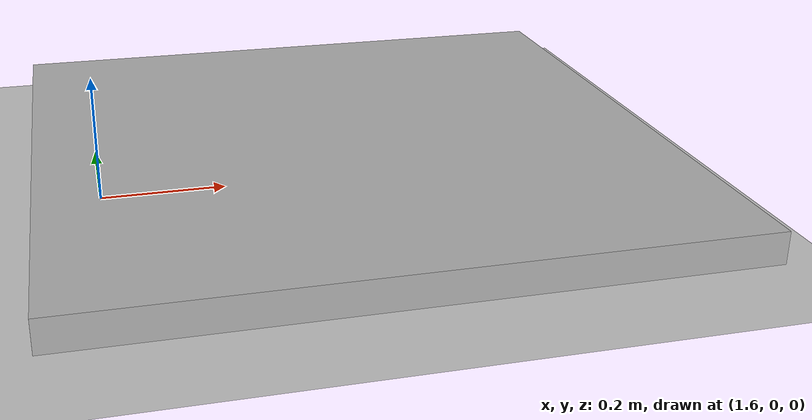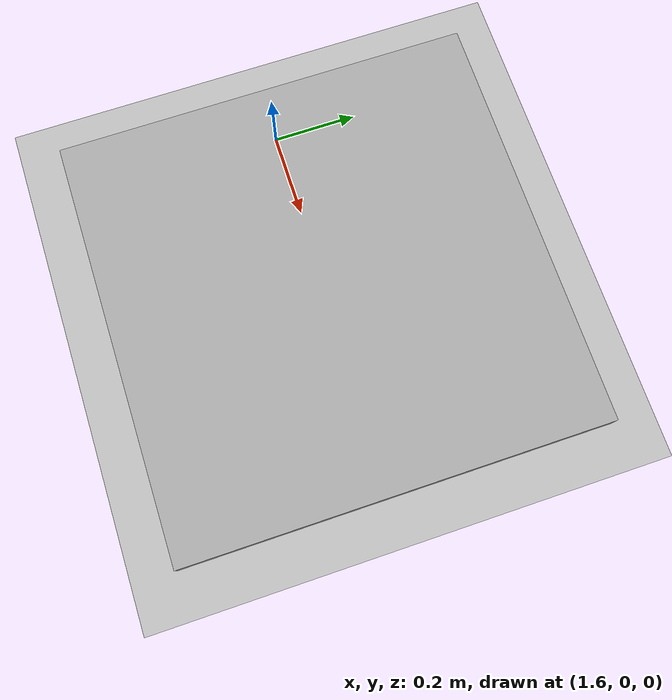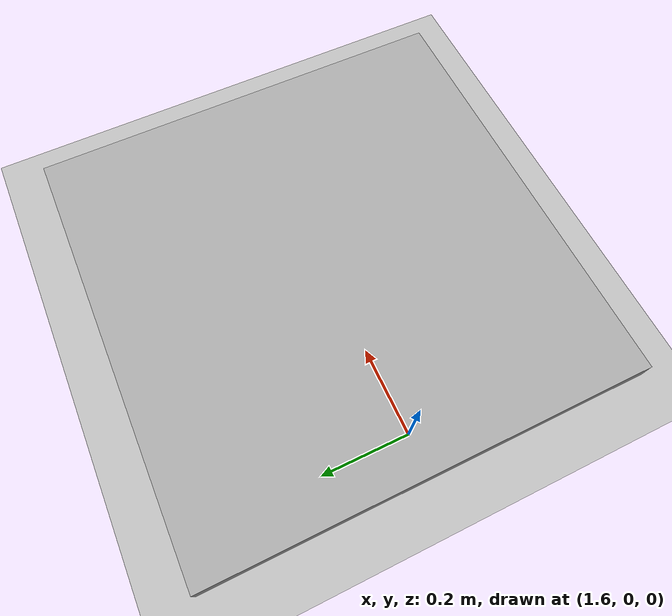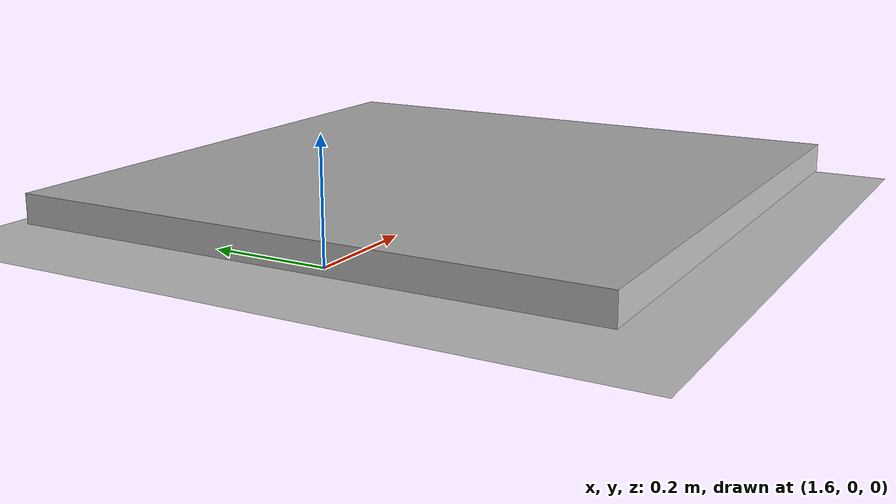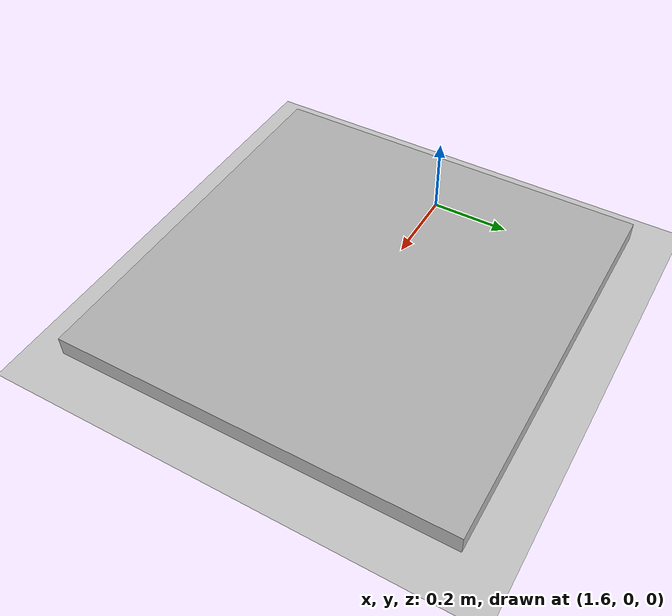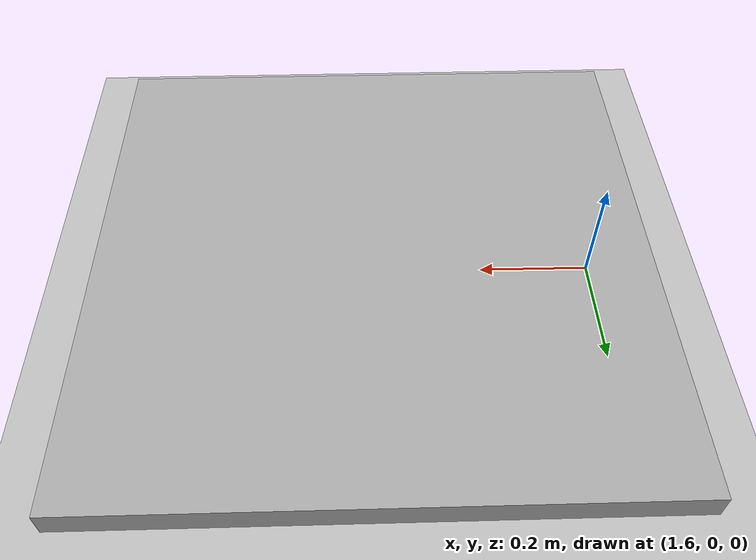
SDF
<?xml version="1.0" ?>
<sdf version="1.4">
  <world name="default">
    <include>
      <uri>model://ground_plane</uri>
    </include>
    <include>
      <uri>model://sun</uri>
    </include>
    <physics type="ode">
      <gravity>0 0 -9.81</gravity>
    </physics>
    <model name="box">
      <pose>2 0 0.05 0 0 0</pose>
      <static>true</static>
      <link name="box">
        <visual name="box_visual">
          <pose>0 0 0 0 0 0</pose>
          <geometry>
            <box>
              <size>1 1 0.05</size>
            </box>
          </geometry>
        </visual>
        <collision name="box_collision">
          <pose>0 0 0 0 0 0</pose>
          <geometry>
            <box>
              <size>1 1 0.05</size>
            </box>
          </geometry>
        </collision>
      </link>
    </model>
  </world>
</sdf>
